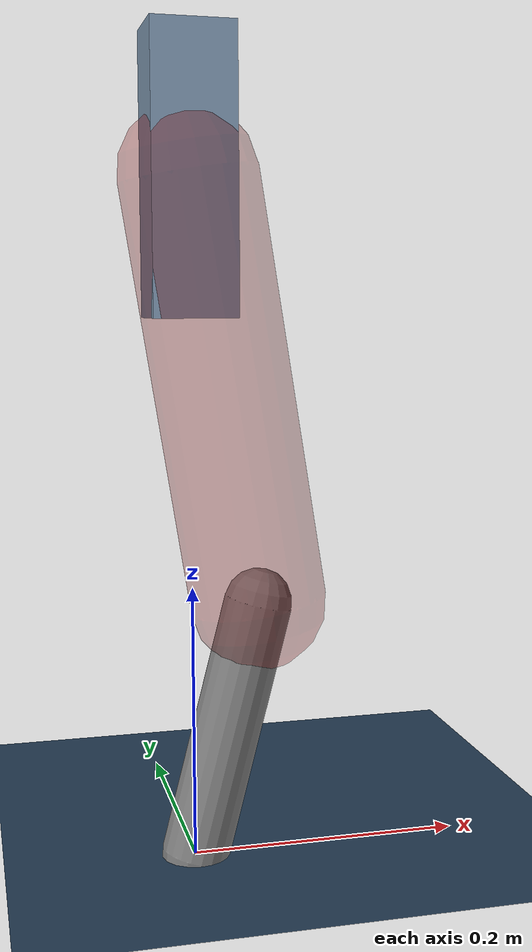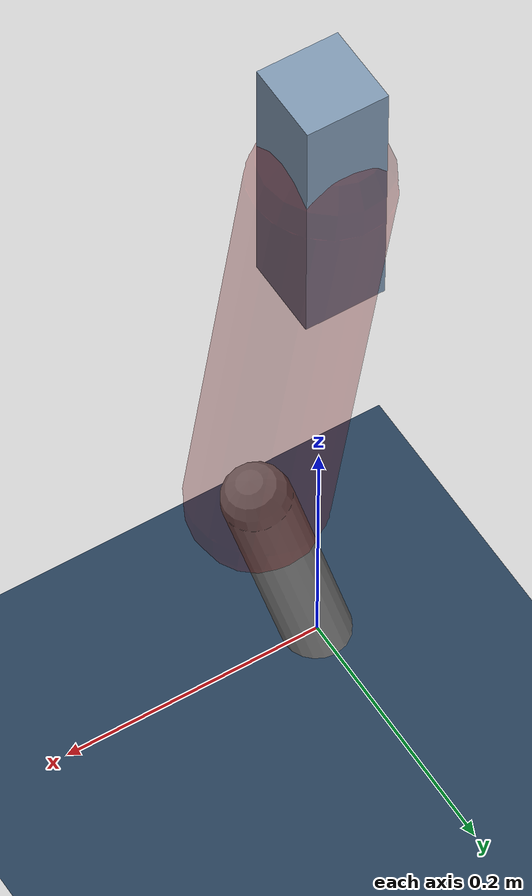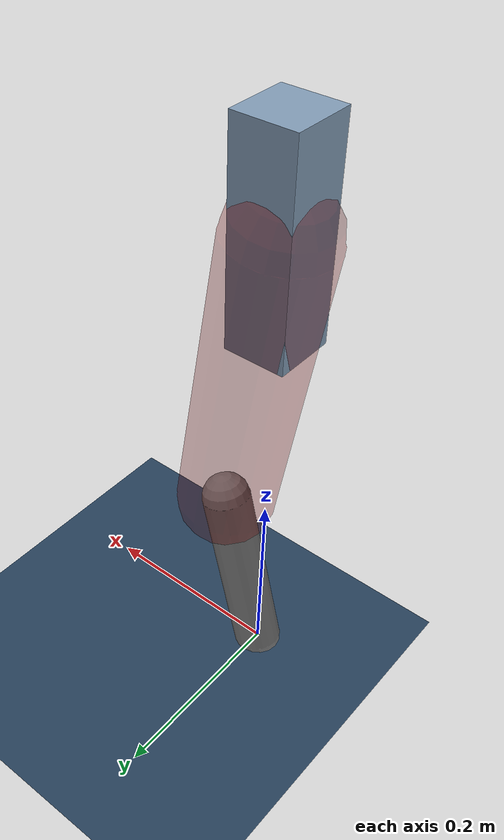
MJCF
<mujoco model="Hopper2D">
	<compiler inertiafromgeom="true" angle="radian" />
	<option timestep="0.001" integrator="implicit" cone="elliptic" solver="Newton" tolerance="1e-10" />

	<default>
		<geom contype="1" conaffinity="1" condim="3" friction="2 0.005 0.0001" solref="0.005 1" />
		<joint limited="true" damping="0.1" />
	</default>

	<asset>
		<texture name="skybox" type="skybox" builtin="gradient" rgb1=".4 .6 .8" rgb2="0 0 0" width="800" height="800" />
		<texture name="grid" type="2d" builtin="checker" rgb1=".1 .2 .3" rgb2=".2 .3 .4" width="300" height="300" mark="edge" markrgb=".2 .3 .4" />
		<material name="ground" texture="grid" texrepeat="1 1" texuniform="true" reflectance="0.1" />
		<material name="leg" rgba="0.5 0.6 0.7 1" />
	</asset>

	<worldbody>

		<geom name="floor" type="plane" size="5 5 0.25" material="ground" />

		<light directional="false" diffuse="0.8 0.8 0.8" specular="0.3 0.3 0.3" pos="0 0 2" dir="0 0 -1" />
		<light mode="targetbodycom" target="base" directional="false" diffuse="0.8 0.8 0.8" specular="0.3 0.3 0.3" pos="0 0 2" dir="0 0 -1" />

		<camera name="fixed" pos="0 -2 1" xyaxes="1 0 0 0 0 1" />
		<camera name="tracking" mode="trackcom" pos="0 -3 1" />

		<body name="root" pos="0 0 0.49435240798910307">
			<joint name="slide_x" type="slide" axis="1 0 0" range="-100 100" />
			<joint name="slide_z" type="slide" axis="0 0 1" range="0 10" />

			<body name="base" pos="0 0 0">
				<geom name="torso" type="box" size="0.03 0.03 0.1" mass="2.455" material="leg" />

				<body name="link1" pos="0 0 0" euler="0 1.413951601914068 0">
					<joint type="hinge" axis="0 -1 0" pos="0 0 0" name="hinge1" limited="true" range="-3.14 3.14" stiffness="0" damping="0.1" />
					<geom name="thigh" type="capsule" fromto="0 0 0 0.31077164663886603 0 0" size="0.05" rgba="0.5 0 0 0.3" mass="1.0179834459249382" />

					<body name="link2" pos="0.31077164663886603 0 0" euler="0 0.4103152103164885 0">
						<joint type="hinge" axis="0 -1 0" pos="0 0 0" name="hinge2" limited="true" range="-3.14 3.14" stiffness="0" damping="0.1" />
						<geom name="shank" type="capsule" fromto="0 0 0 0.19358076135023705 0 0" size="0.025" mass="0.39546460908018966" />

					</body>
				</body>
			</body>
		</body>
	</worldbody>

	<actuator>
		<motor name="torque1" joint="hinge1" ctrlrange="-72.62171019642653 72.62171019642653" ctrllimited="true" gear="1" />
		<motor name="torque2" joint="hinge2" ctrlrange="-101.80728221377079 101.80728221377079" ctrllimited="true" gear="1" />
	</actuator>
</mujoco>
